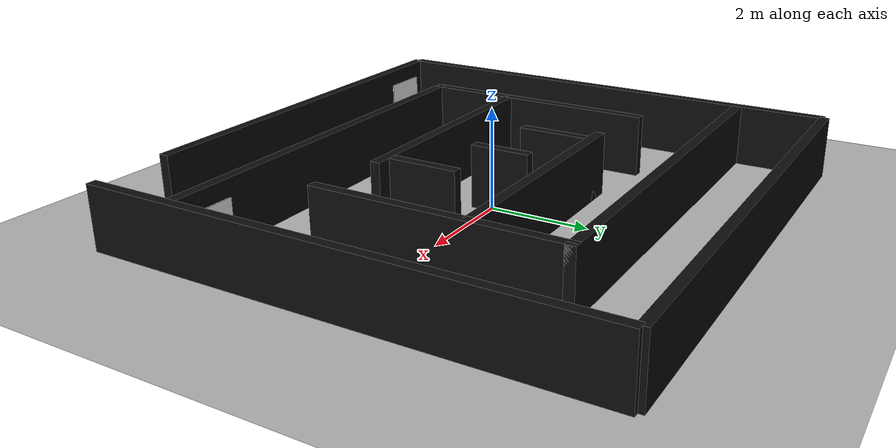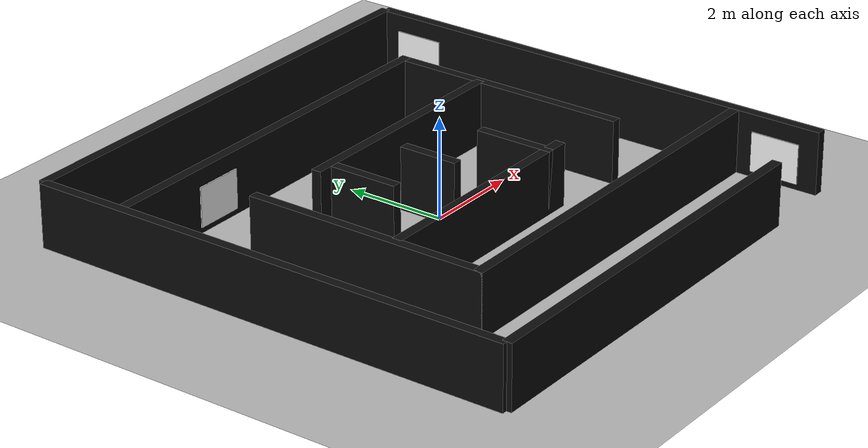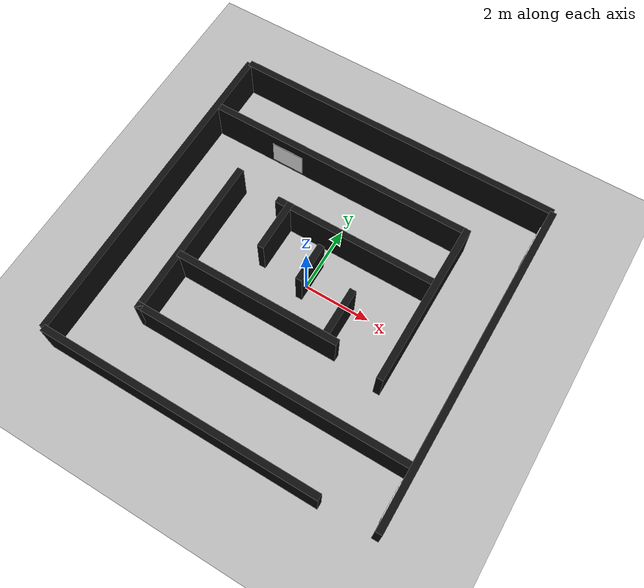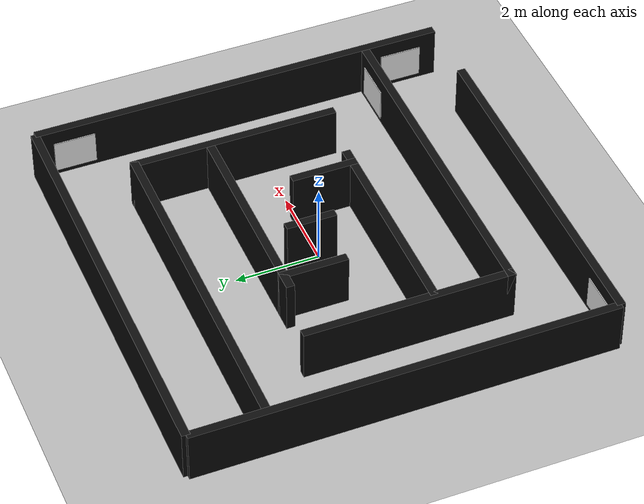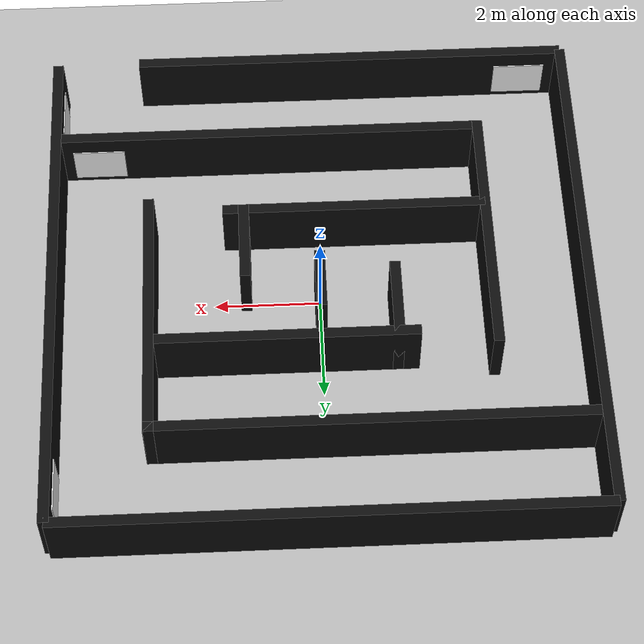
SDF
<?xml version="1.0" ?>
<sdf version="1.8">
  <world name="maze_world">
    <physics type="ignored">
      <max_step_size>0.001</max_step_size>
      <real_time_factor>1.0</real_time_factor>
    </physics>

    <plugin filename="gz-sim-physics-system" name="gz::sim::systems::Physics"/>
    <plugin filename="gz-sim-user-commands-system" name="gz::sim::systems::UserCommands"/>
    <plugin filename="gz-sim-scene-broadcaster-system" name="gz::sim::systems::SceneBroadcaster"/>

    <light name="maze_sun" type="directional">
      <pose>0 0 15 0 0 0</pose>
      <direction>-0.5 0.5 -1</direction>
      <diffuse>0.9 0.9 0.9 1</diffuse>
      <specular>0.2 0.2 0.2 1</specular>
    </light>

    <model name="ground">
      <static>true</static>
      <link name="link">
        <collision name="collision">
          <geometry><plane><normal>0 0 1</normal><size>30 30</size></plane></geometry>
        </collision>
        <visual name="visual">
          <geometry><plane><normal>0 0 1</normal><size>30 30</size></plane></geometry>
          <material><ambient>0.7 0.7 0.7 1</ambient><diffuse>0.7 0.7 0.7 1</diffuse></material>
        </visual>
      </link>
    </model>

    <model name="spiral_maze">
      <static>true</static>
      <link name="walls">
        <visual name="out_top"><pose>0 5 0.5 0 0 0</pose><geometry><box><size>10.0 0.2 1.5</size></box></geometry><material><ambient>0.05 0.05 0.05 1</ambient></material></visual>
        <collision name="out_top_c"><pose>0 5 0.5 0 0 0</pose><geometry><box><size>10.0 0.2 1.5</size></box></geometry></collision>

        <visual name="out_bot"><pose>-0.8 -5 0.5 0 0 0</pose><geometry><box><size>8.4 0.2 1.5</size></box></geometry><material><ambient>0.05 0.05 0.05 1</ambient></material></visual>
        <collision name="out_bot_c"><pose>-0.8 -5 0.5 0 0 0</pose><geometry><box><size>8.4 0.2 1.5</size></box></geometry></collision>

        <visual name="out_left"><pose>-5 0 0.5 0 0 0</pose><geometry><box><size>0.2 10 1.5</size></box></geometry><material><ambient>0.05 0.05 0.05 1</ambient></material></visual>
        <collision name="out_left_c"><pose>-5 0 0.5 0 0 0</pose><geometry><box><size>0.2 10 1.5</size></box></geometry></collision>

        <visual name="out_right"><pose>5 0 0.5 0 0 0</pose><geometry><box><size>0.2 10 1.5</size></box></geometry><material><ambient>0.05 0.05 0.05 1</ambient></material></visual>
        <collision name="out_right_c"><pose>5 0 0.5 0 0 0</pose><geometry><box><size>0.2 10 1.5</size></box></geometry></collision>

        <visual name="mid_top"><pose>-0.8 3.2 0.5 0 0 0</pose><geometry><box><size>8.2 0.2 1.5</size></box></geometry><material><ambient>0.05 0.05 0.05 1</ambient></material></visual>
        <collision name="mid_top_c"><pose>-0.8 3.2 0.5 0 0 0</pose><geometry><box><size>8.2 0.2 1.5</size></box></geometry></collision>

        <visual name="mid_bot"><pose>0.8 -3.2 0.5 0 0 0</pose><geometry><box><size>8.2 0.2 1.5</size></box></geometry><material><ambient>0.05 0.05 0.05 1</ambient></material></visual>
        <collision name="mid_bot_c"><pose>0.8 -3.2 0.5 0 0 0</pose><geometry><box><size>8.2 0.2 1.5</size></box></geometry></collision>

        <visual name="mid_left"><pose>-3.2 -0.8 0.5 0 0 0</pose><geometry><box><size>0.2 5 1.5</size></box></geometry><material><ambient>0.05 0.05 0.05 1</ambient></material></visual>
        <collision name="mid_left_c"><pose>-3.2 -0.8 0.5 0 0 0</pose><geometry><box><size>0.2 5 1.5</size></box></geometry></collision>

        <visual name="mid_right"><pose>3.2 0.8 0.5 0 0 0</pose><geometry><box><size>0.2 5 1.5</size></box></geometry><material><ambient>0.05 0.05 0.05 1</ambient></material></visual>
        <collision name="mid_right_c"><pose>3.2 0.8 0.5 0 0 0</pose><geometry><box><size>0.2 5 1.5</size></box></geometry></collision>

        <visual name="in_top"><pose>0.7 1.4 0.5 0 0 0</pose><geometry><box><size>5 0.2 1.5</size></box></geometry><material><ambient>0.05 0.05 0.05 1</ambient></material></visual>
        <collision name="in_top_c"><pose>0.7 1.4 0.5 0 0 0</pose><geometry><box><size>5 0.2 1.5</size></box></geometry></collision>

        <visual name="in_bot"><pose>-0.7 -1.4 0.5 0 0 0</pose><geometry><box><size>5 0.2 1.5</size></box></geometry><material><ambient>0.05 0.05 0.05 1</ambient></material></visual>
        <collision name="in_bot_c"><pose>-0.7 -1.4 0.5 0 0 0</pose><geometry><box><size>5 0.2 1.5</size></box></geometry></collision>

        <visual name="in_left"><pose>-1.4 0.7 0.5 0 0 0</pose><geometry><box><size>0.2 1.6 1.5</size></box></geometry><material><ambient>0.05 0.05 0.05 1</ambient></material></visual>
        <collision name="in_left_c"><pose>-1.4 0.7 0.5 0 0 0</pose><geometry><box><size>0.2 1.6 1.5</size></box></geometry></collision>

        <visual name="in_right"><pose>1.4 -0.7 0.5 0 0 0</pose><geometry><box><size>0.2 1.6 1.5</size></box></geometry><material><ambient>0.05 0.05 0.05 1</ambient></material></visual>
        <collision name="in_right_c"><pose>1.4 -0.7 0.5 0 0 0</pose><geometry><box><size>0.2 1.6 1.5</size></box></geometry></collision>

        <visual name="center_stub"><pose>0 0.2 0.5 0 0 0</pose><geometry><box><size>0.2 1.2 1.5</size></box></geometry><material><ambient>0.05 0.05 0.05 1</ambient></material></visual>
        <collision name="center_stub_c"><pose>0 0.2 0.5 0 0 0</pose><geometry><box><size>0.2 1.2 1.5</size></box></geometry></collision>

        <visual name="v_poster_1">
          <pose>4.89 4.1 0.5 0 0 0</pose>
          <geometry><box><size>0.02 1.0 0.8</size></box></geometry>
          <material>
            <ambient>1 1 1 1</ambient><diffuse>1 1 1 1</diffuse>
            <pbr><metal><albedo_map>stop.png</albedo_map></metal></pbr>
          </material>
        </visual>

        <visual name="v_poster_2">
          <pose>4.2 -3.09 0.5 0 0 1.57</pose>
          <geometry><box><size>0.02 1.0 0.8</size></box></geometry>
          <material>
            <ambient>1 1 1 1</ambient><diffuse>1 1 1 1</diffuse>
            <pbr><metal><albedo_map>stop.png</albedo_map></metal></pbr>
          </material>
        </visual>

        <visual name="v_poster_3">
          <pose>-2.5 3.09 0.5 0 0 0</pose>
          <geometry><box><size>1.0 0.02 0.8</size></box></geometry>
          <material>
            <ambient>1 1 1 1</ambient><diffuse>1 1 1 1</diffuse>
            <pbr><metal><albedo_map>stop.png</albedo_map></metal></pbr>
          </material>
        </visual>

        <visual name="v_poster_4">
          <pose>-4.2 -4.89 0.5 0 0 1.57</pose>
          <geometry><box><size>0.02 1.0 0.8</size></box></geometry>
          <material>
            <ambient>1 1 1 1</ambient><diffuse>1 1 1 1</diffuse>
            <pbr><metal><albedo_map>stop.png</albedo_map></metal></pbr>
          </material>
        </visual>

        <visual name="v_poster_5">
          <pose>4.89 -4.1 0.5 0 0 0</pose>
          <geometry><box><size>0.02 1.0 0.8</size></box></geometry>
          <material>
            <ambient>1 1 1 1</ambient><diffuse>1 1 1 1</diffuse>
            <pbr><metal><albedo_map>stop.png</albedo_map></metal></pbr>
          </material>
        </visual>

      </link>
    </model>
  </world>
</sdf>
